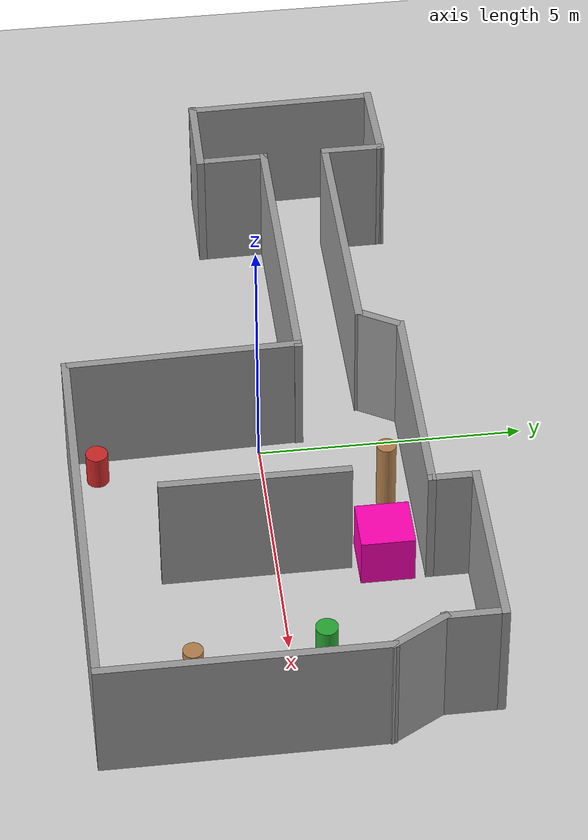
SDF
<sdf version="1.7">
 <world name="default">
  <plugin name="ros_link_attacher_plugin" filename="libgazebo_ros_link_attacher.so"/>
  <light name="sun" type="directional">
   <pose>0 0 10 0 -0 0</pose>
   <diffuse>0.8 0.8 0.8 1</diffuse>
   <specular>0.1 0.1 0.1 1</specular>
   <attenuation>
    <range>1000</range>
    <constant>0.9</constant>
    <linear>0.01</linear>
    <quadratic>0.001</quadratic>
   </attenuation>
   <direction>-0.5 0.5 -1</direction>
   <spot><inner_angle>0</inner_angle><outer_angle>0</outer_angle><falloff>0</falloff></spot>
  </light>
  <model name="ground_plane">
   <static>1</static>
   <link name="link">
    <collision name="collision">
     <geometry><plane><normal>0 0 1</normal><size>100 100</size></plane></geometry>
     <surface><friction><ode><mu>100</mu><mu2>50</mu2></ode></friction></surface>
    </collision>
    <visual name="visual">
     <cast_shadows>0</cast_shadows>
     <geometry><plane><normal>0 0 1</normal><size>100 100</size></plane></geometry>
     <material>
      <script><uri>file://media/materials/scripts/gazebo.material</uri><name>Gazebo/Grey</name></script>
     </material>
    </visual>
   </link>
  </model>
  <gravity>0 0 -9.8</gravity>
  <magnetic_field>6e-06 2.3e-05 -4.2e-05</magnetic_field>
  <atmosphere type="adiabatic"/>
  <physics name="default_physics" default="0" type="ode">
   <max_step_size>0.001</max_step_size>
   <real_time_factor>1</real_time_factor>
   <real_time_update_rate>1000</real_time_update_rate>
  </physics>
  <scene><ambient>0.4 0.4 0.4 1</ambient><background>0.7 0.7 0.7 1</background><shadows>1</shadows></scene>
  <spherical_coordinates>
   <surface_model>EARTH_WGS84</surface_model>
   <latitude_deg>0</latitude_deg>
   <longitude_deg>0</longitude_deg>
   <elevation>0</elevation>
   <heading_deg>0</heading_deg>
  </spherical_coordinates>
  <audio><device>default</device></audio>
  <model name="room_walls">
   <link name="Wall_1">
    <collision name="Wall_1_Collision">
     <geometry><box><size>1.2 0.15 2.5</size></box></geometry>
     <pose>0 0 1.25 0 -0 0</pose>
    </collision>
    <visual name="Wall_1_Visual">
     <pose>0 0 1.25 0 -0 0</pose>
     <geometry><box><size>1.2 0.15 2.5</size></box></geometry>
     <material>
      <script><uri>file://media/materials/scripts/gazebo.material</uri><name>Gazebo/Grey</name></script>
      <ambient>1 1 1 1</ambient>
     </material>
     <meta><layer>0</layer></meta>
    </visual>
    <pose>-5.79107 2.49368 0 0 -0 1.5708</pose>
   </link>
   <link name="Wall_2">
    <collision name="Wall_2_Collision">
     <geometry><box><size>1.79256 0.15 2.5</size></box></geometry>
     <pose>0 0 1.25 0 -0 0</pose>
    </collision>
    <visual name="Wall_2_Visual">
     <pose>0 0 1.25 0 -0 0</pose>
     <geometry><box><size>1.79256 0.15 2.5</size></box></geometry>
     <material>
      <script><uri>file://media/materials/scripts/gazebo.material</uri><name>Gazebo/Grey</name></script>
      <ambient>1 1 1 1</ambient>
     </material>
     <meta><layer>0</layer></meta>
    </visual>
    <pose>-6.61216 3.04631 0 0 -0 -3.1203</pose>
   </link>
   <link name="Wall_3">
    <collision name="Wall_3_Collision">
     <geometry><box><size>3.68565 0.15 2.5</size></box></geometry>
     <pose>0 0 1.25 0 -0 0</pose>
    </collision>
    <visual name="Wall_3_Visual">
     <pose>0 0 1.25 0 -0 0</pose>
     <geometry><box><size>3.68565 0.15 2.5</size></box></geometry>
     <material>
      <script><uri>file://media/materials/scripts/gazebo.material</uri><name>Gazebo/Grey</name></script>
      <ambient>1 1 1 1</ambient>
     </material>
     <meta><layer>0</layer></meta>
    </visual>
    <pose>-7.38434 1.26123 0 0 -0 -1.5545</pose>
   </link>
   <link name="Wall_4">
    <collision name="Wall_4_Collision">
     <geometry><box><size>1.77744 0.15 2.5</size></box></geometry>
     <pose>0 0 1.25 0 -0 0</pose>
    </collision>
    <visual name="Wall_4_Visual">
     <pose>0 0 1.25 0 -0 0</pose>
     <geometry><box><size>1.77744 0.15 2.5</size></box></geometry>
     <material>
      <script><uri>file://media/materials/scripts/gazebo.material</uri><name>Gazebo/Grey</name></script>
      <ambient>1 1 1 1</ambient>
     </material>
     <meta><layer>0</layer></meta>
    </visual>
    <pose>-6.56193 -0.508986 0 0 -0 -0.003224</pose>
   </link>
   <link name="Wall_5">
    <collision name="Wall_5_Collision">
     <geometry><box><size>1.35672 0.15 2.5</size></box></geometry>
     <pose>0 0 1.25 0 -0 0</pose>
    </collision>
    <visual name="Wall_5_Visual">
     <pose>0 0 1.25 0 -0 0</pose>
     <geometry><box><size>1.35672 0.15 2.5</size></box></geometry>
     <material>
      <script><uri>file://media/materials/scripts/gazebo.material</uri><name>Gazebo/Grey</name></script>
      <ambient>1 1 1 1</ambient>
     </material>
     <meta><layer>0</layer></meta>
    </visual>
    <pose>-5.75827 0.136795 0 0 -0 1.5846</pose>
   </link>
   <link name="Wall_6">
    <collision name="Wall_6_Collision">
     <geometry><box><size>5.64664 0.15 2.5</size></box></geometry>
     <pose>0 0 1.25 0 -0 0</pose>
    </collision>
    <visual name="Wall_6_Visual">
     <pose>0 0 1.25 0 -0 0</pose>
     <geometry><box><size>5.64664 0.15 2.5</size></box></geometry>
     <material>
      <script><uri>file://media/materials/scripts/gazebo.material</uri><name>Gazebo/Grey</name></script>
      <ambient>1 1 1 1</ambient>
     </material>
     <meta><layer>0</layer></meta>
    </visual>
    <pose>-3.02009 0.766397 0 0 -0 0.007796</pose>
   </link>
   <link name="Wall_7">
    <collision name="Wall_7_Collision">
     <geometry><box><size>4.38998 0.15 2.5</size></box></geometry>
     <pose>0 0 1.25 0 -0 0</pose>
    </collision>
    <visual name="Wall_7_Visual">
     <pose>0 0 1.25 0 -0 0</pose>
     <geometry><box><size>4.38998 0.15 2.5</size></box></geometry>
     <material>
      <script><uri>file://media/materials/scripts/gazebo.material</uri><name>Gazebo/Grey</name></script>
      <ambient>1 1 1 1</ambient>
     </material>
     <meta><layer>0</layer></meta>
    </visual>
    <pose>-0.242291 -1.34162 0 0 -0 -1.54891</pose>
   </link>
   <link name="Wall_8">
    <collision name="Wall_8_Collision">
     <geometry><box><size>7.75 0.15 2.5</size></box></geometry>
     <pose>0 0 1.25 0 -0 0</pose>
    </collision>
    <visual name="Wall_8_Visual">
     <pose>0 0 1.25 0 -0 0</pose>
     <geometry><box><size>7.75 0.15 2.5</size></box></geometry>
     <material>
      <script><uri>file://media/materials/scripts/gazebo.material</uri><name>Gazebo/Grey</name></script>
      <ambient>1 1 1 1</ambient>
     </material>
     <meta><layer>0</layer></meta>
    </visual>
    <pose>3.60739 -3.55107 0 0 -0 0</pose>
   </link>
   <link name="Wall_9">
    <collision name="Wall_9_Collision">
     <geometry><box><size>5.25 0.15 2.5</size></box></geometry>
     <pose>0 0 1.25 0 -0 0</pose>
    </collision>
    <visual name="Wall_9_Visual">
     <pose>0 0 1.25 0 -0 0</pose>
     <geometry><box><size>5.25 0.15 2.5</size></box></geometry>
     <material>
      <script><uri>file://media/materials/scripts/gazebo.material</uri><name>Gazebo/Grey</name></script>
      <ambient>1 1 1 1</ambient>
     </material>
     <meta><layer>0</layer></meta>
    </visual>
    <pose>7.40739 -1.00107 0 0 -0 1.5708</pose>
   </link>
   <link name="Wall_10">
    <collision name="Wall_10_Collision">
     <geometry><box><size>1.25 0.15 2.5</size></box></geometry>
     <pose>0 0 1.25 0 -0 0</pose>
    </collision>
    <visual name="Wall_10_Visual">
     <pose>0 0 1.25 0 -0 0</pose>
     <geometry><box><size>1.25 0.15 2.5</size></box></geometry>
     <material>
      <script><uri>file://media/materials/scripts/gazebo.material</uri><name>Gazebo/Grey</name></script>
      <ambient>1 1 1 1</ambient>
     </material>
     <meta><layer>0</layer></meta>
    </visual>
    <pose>7.13239 2.02524 0 0 -0 2.0944</pose>
   </link>
   <link name="Wall_11">
    <collision name="Wall_11_Collision">
     <geometry><box><size>1.20114 0.15 2.5</size></box></geometry>
     <pose>0 0 1.25 0 -0 0</pose>
    </collision>
    <visual name="Wall_11_Visual">
     <pose>0 0 1.25 0 -0 0</pose>
     <geometry><box><size>1.20114 0.15 2.5</size></box></geometry>
     <material>
      <script><uri>file://media/materials/scripts/gazebo.material</uri><name>Gazebo/Grey</name></script>
      <ambient>1 1 1 1</ambient>
     </material>
     <meta><layer>0</layer></meta>
    </visual>
    <pose>6.85739 3.02713 0 0 -0 1.5708</pose>
   </link>
   <link name="Wall_12">
    <collision name="Wall_12_Collision">
     <geometry><box><size>3.5 0.15 2.5</size></box></geometry>
     <pose>0 0 1.25 0 -0 0</pose>
    </collision>
    <visual name="Wall_12_Visual">
     <pose>0 0 1.25 0 -0 0</pose>
     <geometry><box><size>3.5 0.15 2.5</size></box></geometry>
     <material>
      <script><uri>file://media/materials/scripts/gazebo.material</uri><name>Gazebo/Grey</name></script>
      <ambient>1 1 1 1</ambient>
     </material>
     <meta><layer>0</layer></meta>
    </visual>
    <pose>5.18239 3.55269 0 0 -0 3.14159</pose>
   </link>
   <link name="Wall_13">
    <collision name="Wall_13_Collision">
     <geometry><box><size>0.951136 0.15 2.5</size></box></geometry>
     <pose>0 0 1.25 0 -0 0</pose>
    </collision>
    <visual name="Wall_13_Visual">
     <pose>0 0 1.25 0 -0 0</pose>
     <geometry><box><size>0.951136 0.15 2.5</size></box></geometry>
     <material>
      <script><uri>file://media/materials/scripts/gazebo.material</uri><name>Gazebo/Grey</name></script>
      <ambient>1 1 1 1</ambient>
     </material>
     <meta><layer>0</layer></meta>
    </visual>
    <pose>3.50739 3.15213 0 0 -0 -1.5708</pose>
   </link>
   <link name="Wall_14">
    <collision name="Wall_14_Collision">
     <geometry><box><size>4.25 0.15 2.5</size></box></geometry>
     <pose>0 0 1.25 0 -0 0</pose>
    </collision>
    <visual name="Wall_14_Visual">
     <pose>0 0 1.25 0 -0 0</pose>
     <geometry><box><size>4.25 0.15 2.5</size></box></geometry>
     <material>
      <script><uri>file://media/materials/scripts/gazebo.material</uri><name>Gazebo/Grey</name></script>
      <ambient>1 1 1 1</ambient>
     </material>
     <meta><layer>0</layer></meta>
    </visual>
    <pose>1.45739 2.75156 0 0 -0 3.14159</pose>
   </link>
   <link name="Wall_15">
    <collision name="Wall_15_Collision">
     <geometry><box><size>0.9 0.15 2.5</size></box></geometry>
     <pose>0 0 1.25 0 -0 0</pose>
    </collision>
    <visual name="Wall_15_Visual">
     <pose>0 0 1.25 0 -0 0</pose>
     <geometry><box><size>0.9 0.15 2.5</size></box></geometry>
     <material>
      <script><uri>file://media/materials/scripts/gazebo.material</uri><name>Gazebo/Grey</name></script>
      <ambient>1 1 1 1</ambient>
     </material>
     <meta><layer>0</layer></meta>
    </visual>
    <pose>-0.805112 2.3835 0 0 -0 -2.0944</pose>
   </link>
   <link name="Wall_16">
    <collision name="Wall_16_Collision">
     <geometry><box><size>4.92373 0.15 2.5</size></box></geometry>
     <pose>0 0 1.25 0 -0 0</pose>
    </collision>
    <visual name="Wall_16_Visual">
     <pose>0 0 1.25 0 -0 0</pose>
     <geometry><box><size>4.92373 0.15 2.5</size></box></geometry>
     <material>
      <script><uri>file://media/materials/scripts/gazebo.material</uri><name>Gazebo/Grey</name></script>
      <ambient>1 1 1 1</ambient>
     </material>
     <meta><layer>0</layer></meta>
    </visual>
    <pose>-3.40434 1.98962 0 0 -0 -3.13077</pose>
   </link>
   <link name="Wall_17">
    <collision name="Wall_17_Collision">
     <geometry><box><size>3.5 0.15 2.5</size></box></geometry>
     <pose>0 0 1.25 0 -0 0</pose>
    </collision>
    <visual name="Wall_17_Visual">
     <pose>0 0 1.25 0 -0 0</pose>
     <geometry><box><size>3.5 0.15 2.5</size></box></geometry>
     <material>
      <script><uri>file://media/materials/scripts/gazebo.material</uri><name>Gazebo/Grey</name></script>
      <ambient>1 1 1 1</ambient>
     </material>
     <meta><layer>0</layer></meta>
    </visual>
    <pose>3.10875 -0.378342 0 0 -0 -1.5708</pose>
   </link>
   <static>1</static>
  </model>
  <model name="construction_cone_1">
   <pose>6.1906 -1.81065 0.728545 0 0 -5.3e-05</pose>
   <link name="link">
    <inertial>
     <mass>1</mass>
     <inertia><ixx>0.145833</ixx><ixy>0</ixy><ixz>0</ixz><iyy>0.145833</iyy><iyz>0</iyz><izz>0.125</izz></inertia>
    </inertial>
    <collision name="collision">
     <geometry><cylinder><radius>0.183096</radius><length>1.4571</length></cylinder></geometry>
    </collision>
    <visual name="visual">
     <geometry><cylinder><radius>0.183096</radius><length>1.4571</length></cylinder></geometry>
     <material>
      <script><name>Gazebo/Wood</name><uri>file://media/materials/scripts/gazebo.material</uri></script>
     </material>
    </visual>
   </link>
  </model>
  <model name="construction_cone_4">
   <pose>1.54493 2.21479 0.728545 0 0 -4.7e-05</pose>
   <link name="link">
    <inertial>
     <mass>1</mass>
     <inertia><ixx>0.145833</ixx><ixy>0</ixy><ixz>0</ixz><iyy>0.145833</iyy><iyz>0</iyz><izz>0.125</izz></inertia>
    </inertial>
    <collision name="collision">
     <geometry><cylinder><radius>0.183096</radius><length>1.4571</length></cylinder></geometry>
    </collision>
    <visual name="visual">
     <geometry><cylinder><radius>0.183096</radius><length>1.4571</length></cylinder></geometry>
     <material>
      <script><name>Gazebo/Wood</name><uri>file://media/materials/scripts/gazebo.material</uri></script>
     </material>
    </visual>
   </link>
  </model>
  <model name="cube">
   <pose>0.041866 0.03697 0.025 -4e-06 -7e-06 0.01506</pose>
   <link name="cube_link">
    <inertial>
     <mass>0.7</mass>
     <inertia>
      <ixx>0.00016667</ixx>
      <ixy>0</ixy>
      <ixz>0</ixz>
      <iyy>0.00016667</iyy>
      <iyz>0</iyz>
      <izz>0.00016667</izz>
     </inertia>
    </inertial>
    <collision name="collision"><geometry><box><size>0.05 0.05 0.05</size></box></geometry></collision>
    <visual name="visual">
     <geometry><box><size>0.05 0.05 0.05</size></box></geometry>
     <material>
      <script><name>Gazebo/Red</name><uri>file://media/materials/scripts/gazebo.material</uri></script>
     </material>
    </visual>
   </link>
   <link name="tag3">
    <pose>0 0 0.025 0 -0 0</pose>
    <collision name="collision"><geometry><box><size>0.0325 0.0325 0.0001</size></box></geometry></collision>
    <visual name="visual">
     <cast_shadows>0</cast_shadows>
     <geometry><box><size>0.0325 0.0325 0.0001</size></box></geometry>
     <material>
      <script>
       <uri>model://artag/materials/scripts</uri>
       <uri>model://artag/materials/textures</uri>
       <name>material/artag3</name>
      </script>
     </material>
    </visual>
    <inertial>
     <inertia><ixx>0.0001</ixx><ixy>0</ixy><ixz>0</ixz><iyy>0.0001</iyy><iyz>0</iyz><izz>0.0001</izz></inertia>
     <mass>0.1</mass>
    </inertial>
   </link>
   <joint name="cube_tag3" type="fixed"><parent>cube_link</parent><child>tag3</child></joint>
  </model>
  <model name="place_table_r">
   <static>1</static>
   <pose>0.343307 -3.08766 0.345 0 -0 0</pose>
   <link name="link">
    <inertial>
     <mass>1</mass>
     <inertia><ixx>0.145833</ixx><ixy>0</ixy><ixz>0</ixz><iyy>0.145833</iyy><iyz>0</iyz><izz>0.125</izz></inertia>
    </inertial>
    <collision name="collision">
     <geometry><cylinder><radius>0.21</radius><length>0.69</length></cylinder></geometry>
    </collision>
    <visual name="visual">
     <geometry><cylinder><radius>0.21</radius><length>0.69</length></cylinder></geometry>
     <material>
      <script><name>Gazebo/Red</name><uri>file://media/materials/scripts/gazebo.material</uri></script>
     </material>
    </visual>
   </link>
  </model>
  <model name="place_table_g">
   <static>1</static>
   <pose>5.22305 0.657344 0.345 0 -0 0</pose>
   <link name="link">
    <inertial>
     <mass>1</mass>
     <inertia><ixx>0.145833</ixx><ixy>0</ixy><ixz>0</ixz><iyy>0.145833</iyy><iyz>0</iyz><izz>0.125</izz></inertia>
    </inertial>
    <collision name="collision">
     <geometry><cylinder><radius>0.21</radius><length>0.69</length></cylinder></geometry>
    </collision>
    <visual name="visual">
     <geometry><cylinder><radius>0.21</radius><length>0.69</length></cylinder></geometry>
     <material>
      <script><name>Gazebo/Green</name><uri>file://media/materials/scripts/gazebo.material</uri></script>
     </material>
    </visual>
   </link>
  </model>
  <model name="cube_clone">
   <pose>5.81382 3.0513 0.024995 0 0.000184 0.015054</pose>
   <link name="cube_link">
    <inertial>
     <mass>0.7</mass>
     <inertia>
      <ixx>0.00016667</ixx>
      <ixy>0</ixy>
      <ixz>0</ixz>
      <iyy>0.00016667</iyy>
      <iyz>0</iyz>
      <izz>0.00016667</izz>
     </inertia>
    </inertial>
    <collision name="collision"><geometry><box><size>0.05 0.05 0.05</size></box></geometry></collision>
    <visual name="visual">
     <geometry><box><size>0.05 0.05 0.05</size></box></geometry>
     <material>
      <script><name>Gazebo/Red</name><uri>file://media/materials/scripts/gazebo.material</uri></script>
     </material>
    </visual>
   </link>
   <link name="tag6">
    <pose>0 0 0.025 0 -0 0</pose>
    <collision name="collision"><geometry><box><size>0.0325 0.0325 0.0001</size></box></geometry></collision>
    <visual name="visual">
     <cast_shadows>0</cast_shadows>
     <geometry><box><size>0.0325 0.0325 0.0001</size></box></geometry>
     <material>
      <script>
       <uri>model://artag/materials/scripts</uri>
       <uri>model://artag/materials/textures</uri>
       <name>material/artag6</name>
      </script>
     </material>
    </visual>
    <inertial>
     <inertia><ixx>0.0001</ixx><ixy>0</ixy><ixz>0</ixz><iyy>0.0001</iyy><iyz>0</iyz><izz>0.0001</izz></inertia>
     <mass>0.1</mass>
    </inertial>
   </link>
   <joint name="cube_tag6" type="fixed"><parent>cube_link</parent><child>tag6</child></joint>
  </model>
  <model name="unit_box_purple">
   <link name="link">
    <inertial>
     <mass>1</mass>
     <inertia>
      <ixx>0.166667</ixx>
      <ixy>0</ixy>
      <ixz>0</ixz>
      <iyy>0.166667</iyy>
      <iyz>0</iyz>
      <izz>0.166667</izz>
     </inertia>
    </inertial>
    <visual name="visual">
     <geometry><box><size>1 1 1</size></box></geometry>
     <material>
      <script><name>Gazebo/Grey</name><uri>file://media/materials/scripts/gazebo.material</uri></script>
      <shader type="pixel"><normal_map>__default__</normal_map></shader>
      <ambient>1 0 0.7 1</ambient>
      <diffuse>0.7 0.7 0.7 1</diffuse>
      <specular>0.31 0.01 0.01 1</specular>
      <emissive>0.8 0 0.7 1</emissive>
     </material>
    </visual>
    <collision name="collision">
     <geometry><box><size>1 1 1</size></box></geometry>
     <surface>
      <friction>
       <ode><mu>1</mu><mu2>1</mu2><fdir1>0 0 0</fdir1><slip1>0</slip1><slip2>0</slip2></ode>
       <torsional>
        <coefficient>1</coefficient>
        <patch_radius>0</patch_radius>
        <surface_radius>0</surface_radius>
        <use_patch_radius>1</use_patch_radius>
        <ode><slip>0</slip></ode>
       </torsional>
      </friction>
      <bounce><restitution_coefficient>0</restitution_coefficient><threshold>1e+06</threshold></bounce>
      <contact>
       <collide_without_contact>0</collide_without_contact>
       <collide_without_contact_bitmask>1</collide_without_contact_bitmask>
       <collide_bitmask>1</collide_bitmask>
       <ode>
        <soft_cfm>0</soft_cfm>
        <soft_erp>0.2</soft_erp>
        <kp>1e+13</kp>
        <kd>1</kd>
        <max_vel>0.01</max_vel>
        <min_depth>0</min_depth>
       </ode>
       <bullet>
        <split_impulse>1</split_impulse>
        <split_impulse_penetration_threshold>-0.01</split_impulse_penetration_threshold>
        <soft_cfm>0</soft_cfm>
        <soft_erp>0.2</soft_erp>
        <kp>1e+13</kp>
        <kd>1</kd>
       </bullet>
      </contact>
     </surface>
    </collision>
   </link>
   <static>0</static>
   <pose>3.09512 1.98235 0.5 0 -0 0</pose>
  </model>
 </world>
</sdf>
